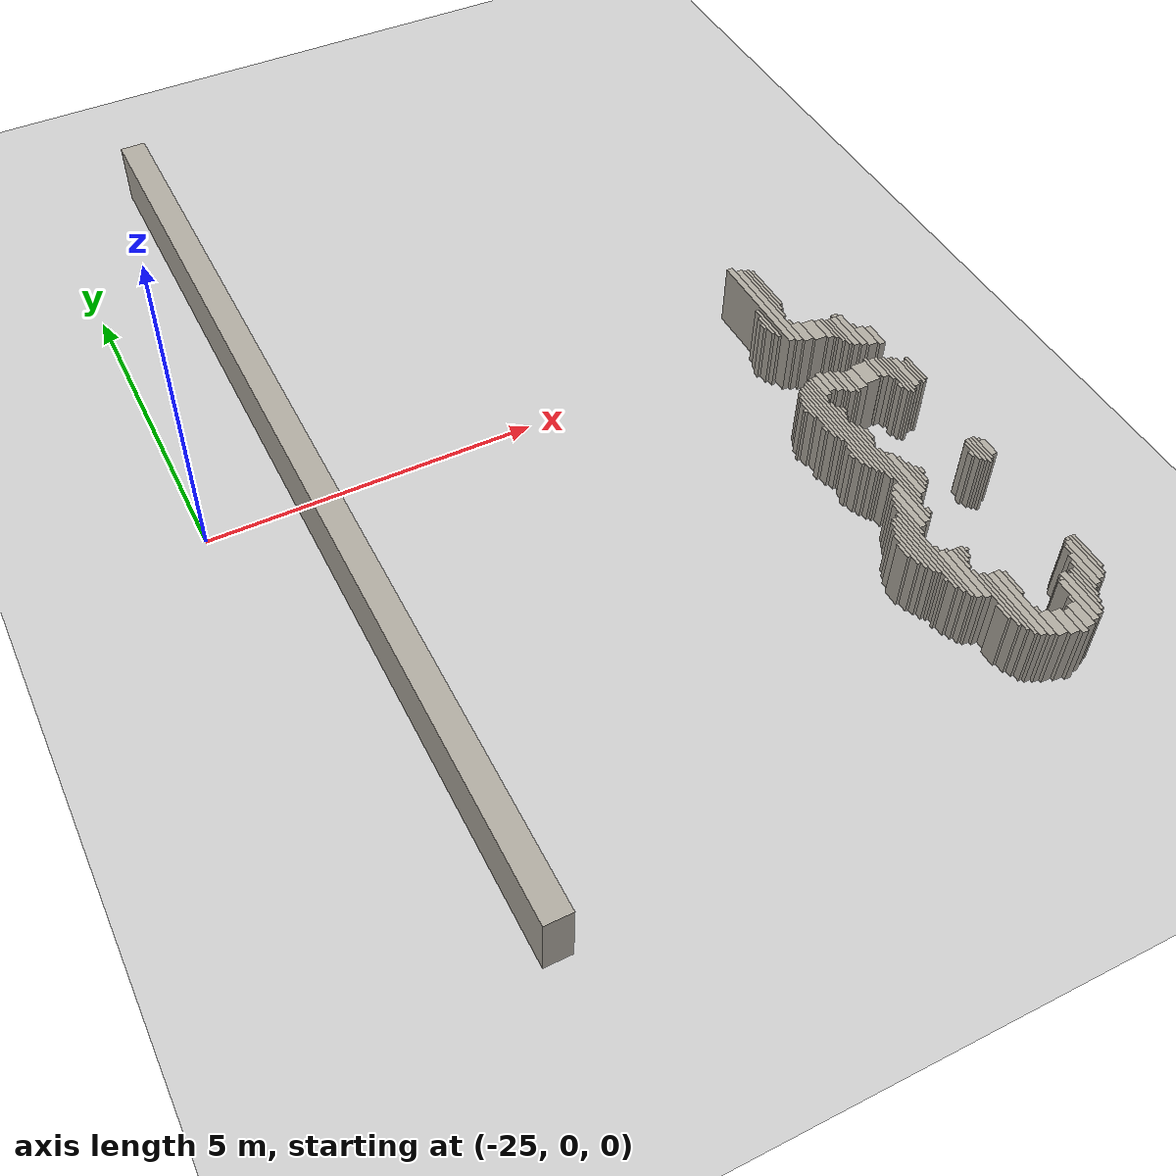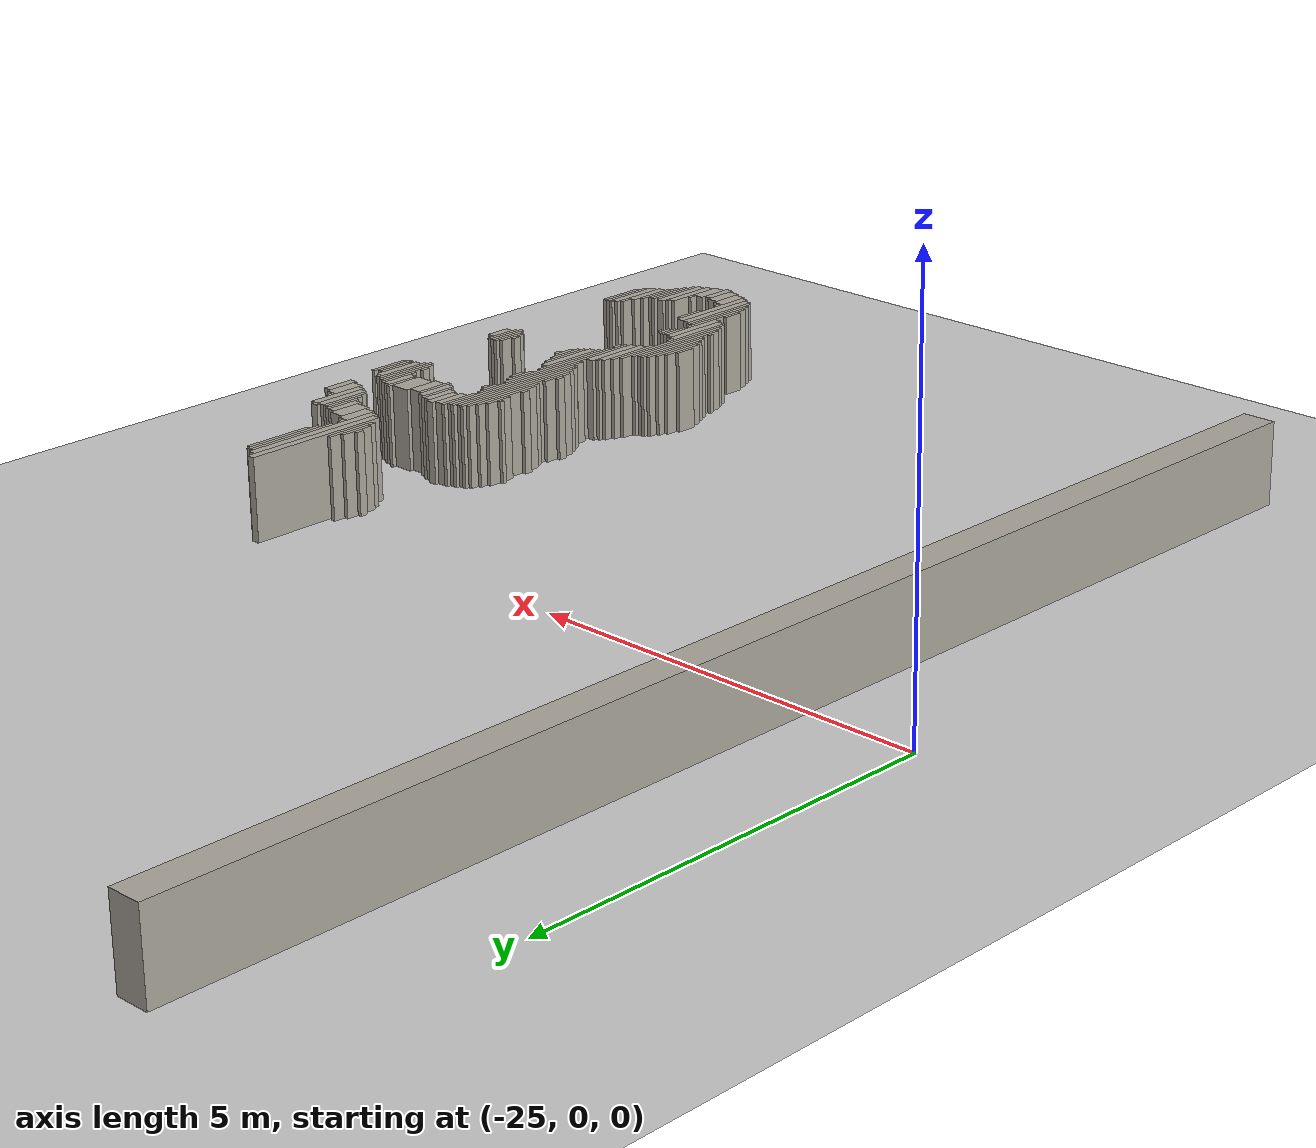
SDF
<sdf version="1.6">
 <world name="fr079_office">
  <include><uri>model://sun</uri></include>
  <include><uri>model://ground_plane</uri></include>
  <model name="fr079_office_walls">
   <static>true</static>
   <link name="w0001">
    <pose>-23.448 0.094 0.500 0 0 0</pose>
    <collision name="c"><geometry><box><size>0.400 15.700 1.000</size></box></geometry></collision>
    <visual name="v">
     <geometry><box><size>0.400 15.700 1.000</size></box></geometry>
     <material><ambient>0.68 0.66 0.62 1</ambient><diffuse>0.68 0.66 0.62 1</diffuse></material>
    </visual>
   </link>
   <link name="w0051">
    <pose>-15.748 -7.006 0.500 0 0 0</pose>
    <collision name="c"><geometry><box><size>0.100 0.400 1.000</size></box></geometry></collision>
    <visual name="v">
     <geometry><box><size>0.100 0.400 1.000</size></box></geometry>
     <material><ambient>0.68 0.66 0.62 1</ambient><diffuse>0.68 0.66 0.62 1</diffuse></material>
    </visual>
   </link>
   <link name="w0076">
    <pose>-15.873 -6.956 0.500 0 0 0</pose>
    <collision name="c"><geometry><box><size>0.150 0.400 1.000</size></box></geometry></collision>
    <visual name="v">
     <geometry><box><size>0.150 0.400 1.000</size></box></geometry>
     <material><ambient>0.68 0.66 0.62 1</ambient><diffuse>0.68 0.66 0.62 1</diffuse></material>
    </visual>
   </link>
   <link name="w0077">
    <pose>-15.623 -6.956 0.500 0 0 0</pose>
    <collision name="c"><geometry><box><size>0.150 0.400 1.000</size></box></geometry></collision>
    <visual name="v">
     <geometry><box><size>0.150 0.400 1.000</size></box></geometry>
     <material><ambient>0.68 0.66 0.62 1</ambient><diffuse>0.68 0.66 0.62 1</diffuse></material>
    </visual>
   </link>
   <link name="w0101">
    <pose>-16.023 -6.906 0.500 0 0 0</pose>
    <collision name="c"><geometry><box><size>0.150 0.400 1.000</size></box></geometry></collision>
    <visual name="v">
     <geometry><box><size>0.150 0.400 1.000</size></box></geometry>
     <material><ambient>0.68 0.66 0.62 1</ambient><diffuse>0.68 0.66 0.62 1</diffuse></material>
    </visual>
   </link>
   <link name="w0102">
    <pose>-15.498 -6.756 0.500 0 0 0</pose>
    <collision name="c"><geometry><box><size>0.100 0.700 1.000</size></box></geometry></collision>
    <visual name="v">
     <geometry><box><size>0.100 0.700 1.000</size></box></geometry>
     <material><ambient>0.68 0.66 0.62 1</ambient><diffuse>0.68 0.66 0.62 1</diffuse></material>
    </visual>
   </link>
   <link name="w0123">
    <pose>-16.148 -6.481 0.500 0 0 0</pose>
    <collision name="c"><geometry><box><size>0.100 1.150 1.000</size></box></geometry></collision>
    <visual name="v">
     <geometry><box><size>0.100 1.150 1.000</size></box></geometry>
     <material><ambient>0.68 0.66 0.62 1</ambient><diffuse>0.68 0.66 0.62 1</diffuse></material>
    </visual>
   </link>
   <link name="w0124">
    <pose>-15.398 -6.681 0.500 0 0 0</pose>
    <collision name="c"><geometry><box><size>0.100 0.750 1.000</size></box></geometry></collision>
    <visual name="v">
     <geometry><box><size>0.100 0.750 1.000</size></box></geometry>
     <material><ambient>0.68 0.66 0.62 1</ambient><diffuse>0.68 0.66 0.62 1</diffuse></material>
    </visual>
   </link>
   <link name="w0135">
    <pose>-16.248 -6.456 0.500 0 0 0</pose>
    <collision name="c"><geometry><box><size>0.100 1.100 1.000</size></box></geometry></collision>
    <visual name="v">
     <geometry><box><size>0.100 1.100 1.000</size></box></geometry>
     <material><ambient>0.68 0.66 0.62 1</ambient><diffuse>0.68 0.66 0.62 1</diffuse></material>
    </visual>
   </link>
   <link name="w0136">
    <pose>-15.323 -6.681 0.500 0 0 0</pose>
    <collision name="c"><geometry><box><size>0.050 0.650 1.000</size></box></geometry></collision>
    <visual name="v">
     <geometry><box><size>0.050 0.650 1.000</size></box></geometry>
     <material><ambient>0.68 0.66 0.62 1</ambient><diffuse>0.68 0.66 0.62 1</diffuse></material>
    </visual>
   </link>
   <link name="w0151">
    <pose>-16.323 -6.406 0.500 0 0 0</pose>
    <collision name="c"><geometry><box><size>0.050 1.100 1.000</size></box></geometry></collision>
    <visual name="v">
     <geometry><box><size>0.050 1.100 1.000</size></box></geometry>
     <material><ambient>0.68 0.66 0.62 1</ambient><diffuse>0.68 0.66 0.62 1</diffuse></material>
    </visual>
   </link>
   <link name="w0162">
    <pose>-15.273 -6.606 0.500 0 0 0</pose>
    <collision name="c"><geometry><box><size>0.050 0.600 1.000</size></box></geometry></collision>
    <visual name="v">
     <geometry><box><size>0.050 0.600 1.000</size></box></geometry>
     <material><ambient>0.68 0.66 0.62 1</ambient><diffuse>0.68 0.66 0.62 1</diffuse></material>
    </visual>
   </link>
   <link name="w0178">
    <pose>-16.373 -6.356 0.500 0 0 0</pose>
    <collision name="c"><geometry><box><size>0.050 1.000 1.000</size></box></geometry></collision>
    <visual name="v">
     <geometry><box><size>0.050 1.000 1.000</size></box></geometry>
     <material><ambient>0.68 0.66 0.62 1</ambient><diffuse>0.68 0.66 0.62 1</diffuse></material>
    </visual>
   </link>
   <link name="w0197">
    <pose>-15.223 -6.556 0.500 0 0 0</pose>
    <collision name="c"><geometry><box><size>0.050 0.500 1.000</size></box></geometry></collision>
    <visual name="v">
     <geometry><box><size>0.050 0.500 1.000</size></box></geometry>
     <material><ambient>0.68 0.66 0.62 1</ambient><diffuse>0.68 0.66 0.62 1</diffuse></material>
    </visual>
   </link>
   <link name="w0210">
    <pose>-16.423 -6.256 0.500 0 0 0</pose>
    <collision name="c"><geometry><box><size>0.050 1.000 1.000</size></box></geometry></collision>
    <visual name="v">
     <geometry><box><size>0.050 1.000 1.000</size></box></geometry>
     <material><ambient>0.68 0.66 0.62 1</ambient><diffuse>0.68 0.66 0.62 1</diffuse></material>
    </visual>
   </link>
   <link name="w0211">
    <pose>-15.573 -6.706 0.500 0 0 0</pose>
    <collision name="c"><geometry><box><size>0.050 0.100 1.000</size></box></geometry></collision>
    <visual name="v">
     <geometry><box><size>0.050 0.100 1.000</size></box></geometry>
     <material><ambient>0.68 0.66 0.62 1</ambient><diffuse>0.68 0.66 0.62 1</diffuse></material>
    </visual>
   </link>
   <link name="w0230">
    <pose>-16.073 -6.656 0.500 0 0 0</pose>
    <collision name="c"><geometry><box><size>0.050 0.100 1.000</size></box></geometry></collision>
    <visual name="v">
     <geometry><box><size>0.050 0.100 1.000</size></box></geometry>
     <material><ambient>0.68 0.66 0.62 1</ambient><diffuse>0.68 0.66 0.62 1</diffuse></material>
    </visual>
   </link>
   <link name="w0231">
    <pose>-15.173 -6.456 0.500 0 0 0</pose>
    <collision name="c"><geometry><box><size>0.050 0.500 1.000</size></box></geometry></collision>
    <visual name="v">
     <geometry><box><size>0.050 0.500 1.000</size></box></geometry>
     <material><ambient>0.68 0.66 0.62 1</ambient><diffuse>0.68 0.66 0.62 1</diffuse></material>
    </visual>
   </link>
   <link name="w0244">
    <pose>-15.098 -6.381 0.500 0 0 0</pose>
    <collision name="c"><geometry><box><size>0.100 0.550 1.000</size></box></geometry></collision>
    <visual name="v">
     <geometry><box><size>0.100 0.550 1.000</size></box></geometry>
     <material><ambient>0.68 0.66 0.62 1</ambient><diffuse>0.68 0.66 0.62 1</diffuse></material>
    </visual>
   </link>
   <link name="w0253">
    <pose>-16.473 -6.481 0.500 0 0 0</pose>
    <collision name="c"><geometry><box><size>0.050 0.250 1.000</size></box></geometry></collision>
    <visual name="v">
     <geometry><box><size>0.050 0.250 1.000</size></box></geometry>
     <material><ambient>0.68 0.66 0.62 1</ambient><diffuse>0.68 0.66 0.62 1</diffuse></material>
    </visual>
   </link>
   <link name="w0254">
    <pose>-14.998 -6.256 0.500 0 0 0</pose>
    <collision name="c"><geometry><box><size>0.100 0.700 1.000</size></box></geometry></collision>
    <visual name="v">
     <geometry><box><size>0.100 0.700 1.000</size></box></geometry>
     <material><ambient>0.68 0.66 0.62 1</ambient><diffuse>0.68 0.66 0.62 1</diffuse></material>
    </visual>
   </link>
   <link name="w0268">
    <pose>-14.923 -6.206 0.500 0 0 0</pose>
    <collision name="c"><geometry><box><size>0.050 0.700 1.000</size></box></geometry></collision>
    <visual name="v">
     <geometry><box><size>0.050 0.700 1.000</size></box></geometry>
     <material><ambient>0.68 0.66 0.62 1</ambient><diffuse>0.68 0.66 0.62 1</diffuse></material>
    </visual>
   </link>
   <link name="w0296">
    <pose>-14.873 -6.156 0.500 0 0 0</pose>
    <collision name="c"><geometry><box><size>0.050 0.600 1.000</size></box></geometry></collision>
    <visual name="v">
     <geometry><box><size>0.050 0.600 1.000</size></box></geometry>
     <material><ambient>0.68 0.66 0.62 1</ambient><diffuse>0.68 0.66 0.62 1</diffuse></material>
    </visual>
   </link>
   <link name="w0314">
    <pose>-15.473 -6.381 0.500 0 0 0</pose>
    <collision name="c"><geometry><box><size>0.050 0.050 1.000</size></box></geometry></collision>
    <visual name="v">
     <geometry><box><size>0.050 0.050 1.000</size></box></geometry>
     <material><ambient>0.68 0.66 0.62 1</ambient><diffuse>0.68 0.66 0.62 1</diffuse></material>
    </visual>
   </link>
   <link name="w0335">
    <pose>-16.073 -6.156 0.500 0 0 0</pose>
    <collision name="c"><geometry><box><size>0.050 0.400 1.000</size></box></geometry></collision>
    <visual name="v">
     <geometry><box><size>0.050 0.400 1.000</size></box></geometry>
     <material><ambient>0.68 0.66 0.62 1</ambient><diffuse>0.68 0.66 0.62 1</diffuse></material>
    </visual>
   </link>
   <link name="w0374">
    <pose>-16.498 -5.781 0.500 0 0 0</pose>
    <collision name="c"><geometry><box><size>0.100 0.850 1.000</size></box></geometry></collision>
    <visual name="v">
     <geometry><box><size>0.100 0.850 1.000</size></box></geometry>
     <material><ambient>0.68 0.66 0.62 1</ambient><diffuse>0.68 0.66 0.62 1</diffuse></material>
    </visual>
   </link>
   <link name="w0381">
    <pose>-16.598 -5.731 0.500 0 0 0</pose>
    <collision name="c"><geometry><box><size>0.100 0.850 1.000</size></box></geometry></collision>
    <visual name="v">
     <geometry><box><size>0.100 0.850 1.000</size></box></geometry>
     <material><ambient>0.68 0.66 0.62 1</ambient><diffuse>0.68 0.66 0.62 1</diffuse></material>
    </visual>
   </link>
   <link name="w0392">
    <pose>-16.673 -5.231 0.500 0 0 0</pose>
    <collision name="c"><geometry><box><size>0.050 1.750 1.000</size></box></geometry></collision>
    <visual name="v">
     <geometry><box><size>0.050 1.750 1.000</size></box></geometry>
     <material><ambient>0.68 0.66 0.62 1</ambient><diffuse>0.68 0.66 0.62 1</diffuse></material>
    </visual>
   </link>
   <link name="w0393">
    <pose>-15.073 -6.031 0.500 0 0 0</pose>
    <collision name="c"><geometry><box><size>0.050 0.150 1.000</size></box></geometry></collision>
    <visual name="v">
     <geometry><box><size>0.050 0.150 1.000</size></box></geometry>
     <material><ambient>0.68 0.66 0.62 1</ambient><diffuse>0.68 0.66 0.62 1</diffuse></material>
    </visual>
   </link>
   <link name="w0419">
    <pose>-16.723 -5.256 0.500 0 0 0</pose>
    <collision name="c"><geometry><box><size>0.050 1.500 1.000</size></box></geometry></collision>
    <visual name="v">
     <geometry><box><size>0.050 1.500 1.000</size></box></geometry>
     <material><ambient>0.68 0.66 0.62 1</ambient><diffuse>0.68 0.66 0.62 1</diffuse></material>
    </visual>
   </link>
   <link name="w0445">
    <pose>-16.773 -5.231 0.500 0 0 0</pose>
    <collision name="c"><geometry><box><size>0.050 1.350 1.000</size></box></geometry></collision>
    <visual name="v">
     <geometry><box><size>0.050 1.350 1.000</size></box></geometry>
     <material><ambient>0.68 0.66 0.62 1</ambient><diffuse>0.68 0.66 0.62 1</diffuse></material>
    </visual>
   </link>
   <link name="w0446">
    <pose>-14.973 -5.881 0.500 0 0 0</pose>
    <collision name="c"><geometry><box><size>0.050 0.050 1.000</size></box></geometry></collision>
    <visual name="v">
     <geometry><box><size>0.050 0.050 1.000</size></box></geometry>
     <material><ambient>0.68 0.66 0.62 1</ambient><diffuse>0.68 0.66 0.62 1</diffuse></material>
    </visual>
   </link>
   <link name="w0490">
    <pose>-16.823 -5.731 0.500 0 0 0</pose>
    <collision name="c"><geometry><box><size>0.050 0.050 1.000</size></box></geometry></collision>
    <visual name="v">
     <geometry><box><size>0.050 0.050 1.000</size></box></geometry>
     <material><ambient>0.68 0.66 0.62 1</ambient><diffuse>0.68 0.66 0.62 1</diffuse></material>
    </visual>
   </link>
   <link name="w0506">
    <pose>-16.423 -5.531 0.500 0 0 0</pose>
    <collision name="c"><geometry><box><size>0.050 0.350 1.000</size></box></geometry></collision>
    <visual name="v">
     <geometry><box><size>0.050 0.350 1.000</size></box></geometry>
     <material><ambient>0.68 0.66 0.62 1</ambient><diffuse>0.68 0.66 0.62 1</diffuse></material>
    </visual>
   </link>
   <link name="w0527">
    <pose>-16.823 -5.081 0.500 0 0 0</pose>
    <collision name="c"><geometry><box><size>0.050 1.050 1.000</size></box></geometry></collision>
    <visual name="v">
     <geometry><box><size>0.050 1.050 1.000</size></box></geometry>
     <material><ambient>0.68 0.66 0.62 1</ambient><diffuse>0.68 0.66 0.62 1</diffuse></material>
    </visual>
   </link>
   <link name="w0528">
    <pose>-16.373 -5.481 0.500 0 0 0</pose>
    <collision name="c"><geometry><box><size>0.050 0.250 1.000</size></box></geometry></collision>
    <visual name="v">
     <geometry><box><size>0.050 0.250 1.000</size></box></geometry>
     <material><ambient>0.68 0.66 0.62 1</ambient><diffuse>0.68 0.66 0.62 1</diffuse></material>
    </visual>
   </link>
   <link name="w0542">
    <pose>-16.873 -5.081 0.500 0 0 0</pose>
    <collision name="c"><geometry><box><size>0.050 0.950 1.000</size></box></geometry></collision>
    <visual name="v">
     <geometry><box><size>0.050 0.950 1.000</size></box></geometry>
     <material><ambient>0.68 0.66 0.62 1</ambient><diffuse>0.68 0.66 0.62 1</diffuse></material>
    </visual>
   </link>
   <link name="w0543">
    <pose>-16.323 -5.456 0.500 0 0 0</pose>
    <collision name="c"><geometry><box><size>0.050 0.200 1.000</size></box></geometry></collision>
    <visual name="v">
     <geometry><box><size>0.050 0.200 1.000</size></box></geometry>
     <material><ambient>0.68 0.66 0.62 1</ambient><diffuse>0.68 0.66 0.62 1</diffuse></material>
    </visual>
   </link>
   <link name="w0561">
    <pose>-16.923 -5.081 0.500 0 0 0</pose>
    <collision name="c"><geometry><box><size>0.050 0.750 1.000</size></box></geometry></collision>
    <visual name="v">
     <geometry><box><size>0.050 0.750 1.000</size></box></geometry>
     <material><ambient>0.68 0.66 0.62 1</ambient><diffuse>0.68 0.66 0.62 1</diffuse></material>
    </visual>
   </link>
   <link name="w0562">
    <pose>-16.273 -5.431 0.500 0 0 0</pose>
    <collision name="c"><geometry><box><size>0.050 0.050 1.000</size></box></geometry></collision>
    <visual name="v">
     <geometry><box><size>0.050 0.050 1.000</size></box></geometry>
     <material><ambient>0.68 0.66 0.62 1</ambient><diffuse>0.68 0.66 0.62 1</diffuse></material>
    </visual>
   </link>
   <link name="w0584">
    <pose>-16.973 -5.081 0.500 0 0 0</pose>
    <collision name="c"><geometry><box><size>0.050 0.550 1.000</size></box></geometry></collision>
    <visual name="v">
     <geometry><box><size>0.050 0.550 1.000</size></box></geometry>
     <material><ambient>0.68 0.66 0.62 1</ambient><diffuse>0.68 0.66 0.62 1</diffuse></material>
    </visual>
   </link>
   <link name="w0585">
    <pose>-16.523 -5.331 0.500 0 0 0</pose>
    <collision name="c"><geometry><box><size>0.050 0.050 1.000</size></box></geometry></collision>
    <visual name="v">
     <geometry><box><size>0.050 0.050 1.000</size></box></geometry>
     <material><ambient>0.68 0.66 0.62 1</ambient><diffuse>0.68 0.66 0.62 1</diffuse></material>
    </visual>
   </link>
   <link name="w0598">
    <pose>-16.623 -5.256 0.500 0 0 0</pose>
    <collision name="c"><geometry><box><size>0.050 0.100 1.000</size></box></geometry></collision>
    <visual name="v">
     <geometry><box><size>0.050 0.100 1.000</size></box></geometry>
     <material><ambient>0.68 0.66 0.62 1</ambient><diffuse>0.68 0.66 0.62 1</diffuse></material>
    </visual>
   </link>
   <link name="w0627">
    <pose>-17.023 -5.081 0.500 0 0 0</pose>
    <collision name="c"><geometry><box><size>0.050 0.250 1.000</size></box></geometry></collision>
    <visual name="v">
     <geometry><box><size>0.050 0.250 1.000</size></box></geometry>
     <material><ambient>0.68 0.66 0.62 1</ambient><diffuse>0.68 0.66 0.62 1</diffuse></material>
    </visual>
   </link>
   <link name="w0689">
    <pose>-16.623 -4.606 0.500 0 0 0</pose>
    <collision name="c"><geometry><box><size>0.050 0.700 1.000</size></box></geometry></collision>
    <visual name="v">
     <geometry><box><size>0.050 0.700 1.000</size></box></geometry>
     <material><ambient>0.68 0.66 0.62 1</ambient><diffuse>0.68 0.66 0.62 1</diffuse></material>
    </visual>
   </link>
   <link name="w0712">
    <pose>-16.548 -4.506 0.500 0 0 0</pose>
    <collision name="c"><geometry><box><size>0.100 0.700 1.000</size></box></geometry></collision>
    <visual name="v">
     <geometry><box><size>0.100 0.700 1.000</size></box></geometry>
     <material><ambient>0.68 0.66 0.62 1</ambient><diffuse>0.68 0.66 0.62 1</diffuse></material>
    </visual>
   </link>
   <link name="w0725">
    <pose>-16.448 -4.431 0.500 0 0 0</pose>
    <collision name="c"><geometry><box><size>0.100 0.750 1.000</size></box></geometry></collision>
    <visual name="v">
     <geometry><box><size>0.100 0.750 1.000</size></box></geometry>
     <material><ambient>0.68 0.66 0.62 1</ambient><diffuse>0.68 0.66 0.62 1</diffuse></material>
    </visual>
   </link>
   <link name="w0738">
    <pose>-16.373 -3.556 0.500 0 0 0</pose>
    <collision name="c"><geometry><box><size>0.050 2.400 1.000</size></box></geometry></collision>
    <visual name="v">
     <geometry><box><size>0.050 2.400 1.000</size></box></geometry>
     <material><ambient>0.68 0.66 0.62 1</ambient><diffuse>0.68 0.66 0.62 1</diffuse></material>
    </visual>
   </link>
   <link name="w0752">
    <pose>-16.323 -4.656 0.500 0 0 0</pose>
    <collision name="c"><geometry><box><size>0.050 0.100 1.000</size></box></geometry></collision>
    <visual name="v">
     <geometry><box><size>0.050 0.100 1.000</size></box></geometry>
     <material><ambient>0.68 0.66 0.62 1</ambient><diffuse>0.68 0.66 0.62 1</diffuse></material>
    </visual>
   </link>
   <link name="w0816">
    <pose>-16.323 -3.656 0.500 0 0 0</pose>
    <collision name="c"><geometry><box><size>0.050 1.700 1.000</size></box></geometry></collision>
    <visual name="v">
     <geometry><box><size>0.050 1.700 1.000</size></box></geometry>
     <material><ambient>0.68 0.66 0.62 1</ambient><diffuse>0.68 0.66 0.62 1</diffuse></material>
    </visual>
   </link>
   <link name="w0843">
    <pose>-16.273 -3.906 0.500 0 0 0</pose>
    <collision name="c"><geometry><box><size>0.050 1.000 1.000</size></box></geometry></collision>
    <visual name="v">
     <geometry><box><size>0.050 1.000 1.000</size></box></geometry>
     <material><ambient>0.68 0.66 0.62 1</ambient><diffuse>0.68 0.66 0.62 1</diffuse></material>
    </visual>
   </link>
   <link name="w0858">
    <pose>-16.198 -3.956 0.500 0 0 0</pose>
    <collision name="c"><geometry><box><size>0.100 0.800 1.000</size></box></geometry></collision>
    <visual name="v">
     <geometry><box><size>0.100 0.800 1.000</size></box></geometry>
     <material><ambient>0.68 0.66 0.62 1</ambient><diffuse>0.68 0.66 0.62 1</diffuse></material>
    </visual>
   </link>
   <link name="w0872">
    <pose>-16.123 -3.981 0.500 0 0 0</pose>
    <collision name="c"><geometry><box><size>0.050 0.650 1.000</size></box></geometry></collision>
    <visual name="v">
     <geometry><box><size>0.050 0.650 1.000</size></box></geometry>
     <material><ambient>0.68 0.66 0.62 1</ambient><diffuse>0.68 0.66 0.62 1</diffuse></material>
    </visual>
   </link>
   <link name="w0873">
    <pose>-15.023 -4.056 0.500 0 0 0</pose>
    <collision name="c"><geometry><box><size>0.050 0.500 1.000</size></box></geometry></collision>
    <visual name="v">
     <geometry><box><size>0.050 0.500 1.000</size></box></geometry>
     <material><ambient>0.68 0.66 0.62 1</ambient><diffuse>0.68 0.66 0.62 1</diffuse></material>
    </visual>
   </link>
   <link name="w0884">
    <pose>-16.073 -4.031 0.500 0 0 0</pose>
    <collision name="c"><geometry><box><size>0.050 0.450 1.000</size></box></geometry></collision>
    <visual name="v">
     <geometry><box><size>0.050 0.450 1.000</size></box></geometry>
     <material><ambient>0.68 0.66 0.62 1</ambient><diffuse>0.68 0.66 0.62 1</diffuse></material>
    </visual>
   </link>
   <link name="w0885">
    <pose>-15.073 -4.031 0.500 0 0 0</pose>
    <collision name="c"><geometry><box><size>0.050 0.450 1.000</size></box></geometry></collision>
    <visual name="v">
     <geometry><box><size>0.050 0.450 1.000</size></box></geometry>
     <material><ambient>0.68 0.66 0.62 1</ambient><diffuse>0.68 0.66 0.62 1</diffuse></material>
    </visual>
   </link>
   <link name="w0886">
    <pose>-14.973 -4.031 0.500 0 0 0</pose>
    <collision name="c"><geometry><box><size>0.050 0.450 1.000</size></box></geometry></collision>
    <visual name="v">
     <geometry><box><size>0.050 0.450 1.000</size></box></geometry>
     <material><ambient>0.68 0.66 0.62 1</ambient><diffuse>0.68 0.66 0.62 1</diffuse></material>
    </visual>
   </link>
   <link name="w0901">
    <pose>-16.023 -4.056 0.500 0 0 0</pose>
    <collision name="c"><geometry><box><size>0.050 0.300 1.000</size></box></geometry></collision>
    <visual name="v">
     <geometry><box><size>0.050 0.300 1.000</size></box></geometry>
     <material><ambient>0.68 0.66 0.62 1</ambient><diffuse>0.68 0.66 0.62 1</diffuse></material>
    </visual>
   </link>
   <link name="w0902">
    <pose>-15.123 -4.031 0.500 0 0 0</pose>
    <collision name="c"><geometry><box><size>0.050 0.350 1.000</size></box></geometry></collision>
    <visual name="v">
     <geometry><box><size>0.050 0.350 1.000</size></box></geometry>
     <material><ambient>0.68 0.66 0.62 1</ambient><diffuse>0.68 0.66 0.62 1</diffuse></material>
    </visual>
   </link>
   <link name="w0903">
    <pose>-14.898 -4.056 0.500 0 0 0</pose>
    <collision name="c"><geometry><box><size>0.100 0.300 1.000</size></box></geometry></collision>
    <visual name="v">
     <geometry><box><size>0.100 0.300 1.000</size></box></geometry>
     <material><ambient>0.68 0.66 0.62 1</ambient><diffuse>0.68 0.66 0.62 1</diffuse></material>
    </visual>
   </link>
   <link name="w0921">
    <pose>-16.523 -4.131 0.500 0 0 0</pose>
    <collision name="c"><geometry><box><size>0.050 0.050 1.000</size></box></geometry></collision>
    <visual name="v">
     <geometry><box><size>0.050 0.050 1.000</size></box></geometry>
     <material><ambient>0.68 0.66 0.62 1</ambient><diffuse>0.68 0.66 0.62 1</diffuse></material>
    </visual>
   </link>
   <link name="w0940">
    <pose>-15.173 -4.056 0.500 0 0 0</pose>
    <collision name="c"><geometry><box><size>0.050 0.100 1.000</size></box></geometry></collision>
    <visual name="v">
     <geometry><box><size>0.050 0.100 1.000</size></box></geometry>
     <material><ambient>0.68 0.66 0.62 1</ambient><diffuse>0.68 0.66 0.62 1</diffuse></material>
    </visual>
   </link>
   <link name="w0950">
    <pose>-15.973 -4.006 0.500 0 0 0</pose>
    <collision name="c"><geometry><box><size>0.050 0.100 1.000</size></box></geometry></collision>
    <visual name="v">
     <geometry><box><size>0.050 0.100 1.000</size></box></geometry>
     <material><ambient>0.68 0.66 0.62 1</ambient><diffuse>0.68 0.66 0.62 1</diffuse></material>
    </visual>
   </link>
   <link name="w0975">
    <pose>-16.423 -2.906 0.500 0 0 0</pose>
    <collision name="c"><geometry><box><size>0.050 2.100 1.000</size></box></geometry></collision>
    <visual name="v">
     <geometry><box><size>0.050 2.100 1.000</size></box></geometry>
     <material><ambient>0.68 0.66 0.62 1</ambient><diffuse>0.68 0.66 0.62 1</diffuse></material>
    </visual>
   </link>
   <link name="w0989">
    <pose>-14.923 -3.881 0.500 0 0 0</pose>
    <collision name="c"><geometry><box><size>0.050 0.050 1.000</size></box></geometry></collision>
    <visual name="v">
     <geometry><box><size>0.050 0.050 1.000</size></box></geometry>
     <material><ambient>0.68 0.66 0.62 1</ambient><diffuse>0.68 0.66 0.62 1</diffuse></material>
    </visual>
   </link>
   <link name="w1014">
    <pose>-16.473 -2.831 0.500 0 0 0</pose>
    <collision name="c"><geometry><box><size>0.050 1.950 1.000</size></box></geometry></collision>
    <visual name="v">
     <geometry><box><size>0.050 1.950 1.000</size></box></geometry>
     <material><ambient>0.68 0.66 0.62 1</ambient><diffuse>0.68 0.66 0.62 1</diffuse></material>
    </visual>
   </link>
   <link name="w1025">
    <pose>-16.523 -2.831 0.500 0 0 0</pose>
    <collision name="c"><geometry><box><size>0.050 1.850 1.000</size></box></geometry></collision>
    <visual name="v">
     <geometry><box><size>0.050 1.850 1.000</size></box></geometry>
     <material><ambient>0.68 0.66 0.62 1</ambient><diffuse>0.68 0.66 0.62 1</diffuse></material>
    </visual>
   </link>
   <link name="w1052">
    <pose>-16.573 -2.781 0.500 0 0 0</pose>
    <collision name="c"><geometry><box><size>0.050 1.750 1.000</size></box></geometry></collision>
    <visual name="v">
     <geometry><box><size>0.050 1.750 1.000</size></box></geometry>
     <material><ambient>0.68 0.66 0.62 1</ambient><diffuse>0.68 0.66 0.62 1</diffuse></material>
    </visual>
   </link>
   <link name="w1071">
    <pose>-16.623 -3.356 0.500 0 0 0</pose>
    <collision name="c"><geometry><box><size>0.050 0.400 1.000</size></box></geometry></collision>
    <visual name="v">
     <geometry><box><size>0.050 0.400 1.000</size></box></geometry>
     <material><ambient>0.68 0.66 0.62 1</ambient><diffuse>0.68 0.66 0.62 1</diffuse></material>
    </visual>
   </link>
   <link name="w1072">
    <pose>-16.223 -3.531 0.500 0 0 0</pose>
    <collision name="c"><geometry><box><size>0.050 0.050 1.000</size></box></geometry></collision>
    <visual name="v">
     <geometry><box><size>0.050 0.050 1.000</size></box></geometry>
     <material><ambient>0.68 0.66 0.62 1</ambient><diffuse>0.68 0.66 0.62 1</diffuse></material>
    </visual>
   </link>
   <link name="w1093">
    <pose>-16.673 -3.356 0.500 0 0 0</pose>
    <collision name="c"><geometry><box><size>0.050 0.100 1.000</size></box></geometry></collision>
    <visual name="v">
     <geometry><box><size>0.050 0.100 1.000</size></box></geometry>
     <material><ambient>0.68 0.66 0.62 1</ambient><diffuse>0.68 0.66 0.62 1</diffuse></material>
    </visual>
   </link>
   <link name="w1106">
    <pose>-16.273 -3.106 0.500 0 0 0</pose>
    <collision name="c"><geometry><box><size>0.050 0.400 1.000</size></box></geometry></collision>
    <visual name="v">
     <geometry><box><size>0.050 0.400 1.000</size></box></geometry>
     <material><ambient>0.68 0.66 0.62 1</ambient><diffuse>0.68 0.66 0.62 1</diffuse></material>
    </visual>
   </link>
   <link name="w1117">
    <pose>-16.223 -3.106 0.500 0 0 0</pose>
    <collision name="c"><geometry><box><size>0.050 0.200 1.000</size></box></geometry></collision>
    <visual name="v">
     <geometry><box><size>0.050 0.200 1.000</size></box></geometry>
     <material><ambient>0.68 0.66 0.62 1</ambient><diffuse>0.68 0.66 0.62 1</diffuse></material>
    </visual>
   </link>
   <link name="w1139">
    <pose>-16.623 -2.506 0.500 0 0 0</pose>
    <collision name="c"><geometry><box><size>0.050 1.100 1.000</size></box></geometry></collision>
    <visual name="v">
     <geometry><box><size>0.050 1.100 1.000</size></box></geometry>
     <material><ambient>0.68 0.66 0.62 1</ambient><diffuse>0.68 0.66 0.62 1</diffuse></material>
    </visual>
   </link>
   <link name="w1159">
    <pose>-16.673 -2.506 0.500 0 0 0</pose>
    <collision name="c"><geometry><box><size>0.050 0.900 1.000</size></box></geometry></collision>
    <visual name="v">
     <geometry><box><size>0.050 0.900 1.000</size></box></geometry>
     <material><ambient>0.68 0.66 0.62 1</ambient><diffuse>0.68 0.66 0.62 1</diffuse></material>
    </visual>
   </link>
   <link name="w1201">
    <pose>-16.723 -2.756 0.500 0 0 0</pose>
    <collision name="c"><geometry><box><size>0.050 0.100 1.000</size></box></geometry></collision>
    <visual name="v">
     <geometry><box><size>0.050 0.100 1.000</size></box></geometry>
     <material><ambient>0.68 0.66 0.62 1</ambient><diffuse>0.68 0.66 0.62 1</diffuse></material>
    </visual>
   </link>
   <link name="w1218">
    <pose>-16.323 -2.581 0.500 0 0 0</pose>
    <collision name="c"><geometry><box><size>0.050 0.250 1.000</size></box></geometry></collision>
    <visual name="v">
     <geometry><box><size>0.050 0.250 1.000</size></box></geometry>
     <material><ambient>0.68 0.66 0.62 1</ambient><diffuse>0.68 0.66 0.62 1</diffuse></material>
    </visual>
   </link>
   <link name="w1219">
    <pose>-15.173 -2.306 0.500 0 0 0</pose>
    <collision name="c"><geometry><box><size>0.050 0.800 1.000</size></box></geometry></collision>
    <visual name="v">
     <geometry><box><size>0.050 0.800 1.000</size></box></geometry>
     <material><ambient>0.68 0.66 0.62 1</ambient><diffuse>0.68 0.66 0.62 1</diffuse></material>
    </visual>
   </link>
   <link name="w1230">
    <pose>-15.223 -2.281 0.500 0 0 0</pose>
    <collision name="c"><geometry><box><size>0.050 0.750 1.000</size></box></geometry></collision>
    <visual name="v">
     <geometry><box><size>0.050 0.750 1.000</size></box></geometry>
     <material><ambient>0.68 0.66 0.62 1</ambient><diffuse>0.68 0.66 0.62 1</diffuse></material>
    </visual>
   </link>
   <link name="w1231">
    <pose>-15.123 -2.306 0.500 0 0 0</pose>
    <collision name="c"><geometry><box><size>0.050 0.700 1.000</size></box></geometry></collision>
    <visual name="v">
     <geometry><box><size>0.050 0.700 1.000</size></box></geometry>
     <material><ambient>0.68 0.66 0.62 1</ambient><diffuse>0.68 0.66 0.62 1</diffuse></material>
    </visual>
   </link>
   <link name="w1244">
    <pose>-16.273 -2.556 0.500 0 0 0</pose>
    <collision name="c"><geometry><box><size>0.050 0.100 1.000</size></box></geometry></collision>
    <visual name="v">
     <geometry><box><size>0.050 0.100 1.000</size></box></geometry>
     <material><ambient>0.68 0.66 0.62 1</ambient><diffuse>0.68 0.66 0.62 1</diffuse></material>
    </visual>
   </link>
   <link name="w1245">
    <pose>-15.048 -2.306 0.500 0 0 0</pose>
    <collision name="c"><geometry><box><size>0.100 0.600 1.000</size></box></geometry></collision>
    <visual name="v">
     <geometry><box><size>0.100 0.600 1.000</size></box></geometry>
     <material><ambient>0.68 0.66 0.62 1</ambient><diffuse>0.68 0.66 0.62 1</diffuse></material>
    </visual>
   </link>
   <link name="w1246">
    <pose>-14.923 -2.356 0.500 0 0 0</pose>
    <collision name="c"><geometry><box><size>0.050 0.500 1.000</size></box></geometry></collision>
    <visual name="v">
     <geometry><box><size>0.050 0.500 1.000</size></box></geometry>
     <material><ambient>0.68 0.66 0.62 1</ambient><diffuse>0.68 0.66 0.62 1</diffuse></material>
    </visual>
   </link>
   <link name="w1260">
    <pose>-15.273 -2.506 0.500 0 0 0</pose>
    <collision name="c"><geometry><box><size>0.050 0.100 1.000</size></box></geometry></collision>
    <visual name="v">
     <geometry><box><size>0.050 0.100 1.000</size></box></geometry>
     <material><ambient>0.68 0.66 0.62 1</ambient><diffuse>0.68 0.66 0.62 1</diffuse></material>
    </visual>
   </link>
   <link name="w1261">
    <pose>-14.973 -2.331 0.500 0 0 0</pose>
    <collision name="c"><geometry><box><size>0.050 0.450 1.000</size></box></geometry></collision>
    <visual name="v">
     <geometry><box><size>0.050 0.450 1.000</size></box></geometry>
     <material><ambient>0.68 0.66 0.62 1</ambient><diffuse>0.68 0.66 0.62 1</diffuse></material>
    </visual>
   </link>
   <link name="w1262">
    <pose>-14.873 -2.306 0.500 0 0 0</pose>
    <collision name="c"><geometry><box><size>0.050 0.500 1.000</size></box></geometry></collision>
    <visual name="v">
     <geometry><box><size>0.050 0.500 1.000</size></box></geometry>
     <material><ambient>0.68 0.66 0.62 1</ambient><diffuse>0.68 0.66 0.62 1</diffuse></material>
    </visual>
   </link>
   <link name="w1277">
    <pose>-16.723 -2.331 0.500 0 0 0</pose>
    <collision name="c"><geometry><box><size>0.050 0.350 1.000</size></box></geometry></collision>
    <visual name="v">
     <geometry><box><size>0.050 0.350 1.000</size></box></geometry>
     <material><ambient>0.68 0.66 0.62 1</ambient><diffuse>0.68 0.66 0.62 1</diffuse></material>
    </visual>
   </link>
   <link name="w1329">
    <pose>-16.773 -2.331 0.500 0 0 0</pose>
    <collision name="c"><geometry><box><size>0.050 0.050 1.000</size></box></geometry></collision>
    <visual name="v">
     <geometry><box><size>0.050 0.050 1.000</size></box></geometry>
     <material><ambient>0.68 0.66 0.62 1</ambient><diffuse>0.68 0.66 0.62 1</diffuse></material>
    </visual>
   </link>
   <link name="w1330">
    <pose>-15.873 -2.131 0.500 0 0 0</pose>
    <collision name="c"><geometry><box><size>0.050 0.450 1.000</size></box></geometry></collision>
    <visual name="v">
     <geometry><box><size>0.050 0.450 1.000</size></box></geometry>
     <material><ambient>0.68 0.66 0.62 1</ambient><diffuse>0.68 0.66 0.62 1</diffuse></material>
    </visual>
   </link>
   <link name="w1331">
    <pose>-15.273 -2.106 0.500 0 0 0</pose>
    <collision name="c"><geometry><box><size>0.050 0.500 1.000</size></box></geometry></collision>
    <visual name="v">
     <geometry><box><size>0.050 0.500 1.000</size></box></geometry>
     <material><ambient>0.68 0.66 0.62 1</ambient><diffuse>0.68 0.66 0.62 1</diffuse></material>
    </visual>
   </link>
   <link name="w1345">
    <pose>-16.373 -2.056 0.500 0 0 0</pose>
    <collision name="c"><geometry><box><size>0.050 0.500 1.000</size></box></geometry></collision>
    <visual name="v">
     <geometry><box><size>0.050 0.500 1.000</size></box></geometry>
     <material><ambient>0.68 0.66 0.62 1</ambient><diffuse>0.68 0.66 0.62 1</diffuse></material>
    </visual>
   </link>
   <link name="w1346">
    <pose>-15.948 -2.081 0.500 0 0 0</pose>
    <collision name="c"><geometry><box><size>0.100 0.450 1.000</size></box></geometry></collision>
    <visual name="v">
     <geometry><box><size>0.100 0.450 1.000</size></box></geometry>
     <material><ambient>0.68 0.66 0.62 1</ambient><diffuse>0.68 0.66 0.62 1</diffuse></material>
    </visual>
   </link>
   <link name="w1347">
    <pose>-15.773 -2.106 0.500 0 0 0</pose>
    <collision name="c"><geometry><box><size>0.150 0.400 1.000</size></box></geometry></collision>
    <visual name="v">
     <geometry><box><size>0.150 0.400 1.000</size></box></geometry>
     <material><ambient>0.68 0.66 0.62 1</ambient><diffuse>0.68 0.66 0.62 1</diffuse></material>
    </visual>
   </link>
   <link name="w1361">
    <pose>-16.023 -2.031 0.500 0 0 0</pose>
    <collision name="c"><geometry><box><size>0.050 0.450 1.000</size></box></geometry></collision>
    <visual name="v">
     <geometry><box><size>0.050 0.450 1.000</size></box></geometry>
     <material><ambient>0.68 0.66 0.62 1</ambient><diffuse>0.68 0.66 0.62 1</diffuse></material>
    </visual>
   </link>
   <link name="w1362">
    <pose>-15.573 -2.056 0.500 0 0 0</pose>
    <collision name="c"><geometry><box><size>0.250 0.400 1.000</size></box></geometry></collision>
    <visual name="v">
     <geometry><box><size>0.250 0.400 1.000</size></box></geometry>
     <material><ambient>0.68 0.66 0.62 1</ambient><diffuse>0.68 0.66 0.62 1</diffuse></material>
    </visual>
   </link>
   <link name="w1363">
    <pose>-15.348 -2.056 0.500 0 0 0</pose>
    <collision name="c"><geometry><box><size>0.100 0.400 1.000</size></box></geometry></collision>
    <visual name="v">
     <geometry><box><size>0.100 0.400 1.000</size></box></geometry>
     <material><ambient>0.68 0.66 0.62 1</ambient><diffuse>0.68 0.66 0.62 1</diffuse></material>
    </visual>
   </link>
   <link name="w1382">
    <pose>-16.298 -2.006 0.500 0 0 0</pose>
    <collision name="c"><geometry><box><size>0.100 0.400 1.000</size></box></geometry></collision>
    <visual name="v">
     <geometry><box><size>0.100 0.400 1.000</size></box></geometry>
     <material><ambient>0.68 0.66 0.62 1</ambient><diffuse>0.68 0.66 0.62 1</diffuse></material>
    </visual>
   </link>
   <link name="w1383">
    <pose>-16.098 -2.006 0.500 0 0 0</pose>
    <collision name="c"><geometry><box><size>0.100 0.400 1.000</size></box></geometry></collision>
    <visual name="v">
     <geometry><box><size>0.100 0.400 1.000</size></box></geometry>
     <material><ambient>0.68 0.66 0.62 1</ambient><diffuse>0.68 0.66 0.62 1</diffuse></material>
    </visual>
   </link>
   <link name="w1384">
    <pose>-15.423 -2.006 0.500 0 0 0</pose>
    <collision name="c"><geometry><box><size>0.050 0.400 1.000</size></box></geometry></collision>
    <visual name="v">
     <geometry><box><size>0.050 0.400 1.000</size></box></geometry>
     <material><ambient>0.68 0.66 0.62 1</ambient><diffuse>0.68 0.66 0.62 1</diffuse></material>
    </visual>
   </link>
   <link name="w1402">
    <pose>-16.198 -1.956 0.500 0 0 0</pose>
    <collision name="c"><geometry><box><size>0.100 0.400 1.000</size></box></geometry></collision>
    <visual name="v">
     <geometry><box><size>0.100 0.400 1.000</size></box></geometry>
     <material><ambient>0.68 0.66 0.62 1</ambient><diffuse>0.68 0.66 0.62 1</diffuse></material>
    </visual>
   </link>
   <link name="w1446">
    <pose>-15.073 -1.981 0.500 0 0 0</pose>
    <collision name="c"><geometry><box><size>0.050 0.050 1.000</size></box></geometry></collision>
    <visual name="v">
     <geometry><box><size>0.050 0.050 1.000</size></box></geometry>
     <material><ambient>0.68 0.66 0.62 1</ambient><diffuse>0.68 0.66 0.62 1</diffuse></material>
    </visual>
   </link>
   <link name="w1571">
    <pose>-14.998 -1.456 0.500 0 0 0</pose>
    <collision name="c"><geometry><box><size>0.100 0.400 1.000</size></box></geometry></collision>
    <visual name="v">
     <geometry><box><size>0.100 0.400 1.000</size></box></geometry>
     <material><ambient>0.68 0.66 0.62 1</ambient><diffuse>0.68 0.66 0.62 1</diffuse></material>
    </visual>
   </link>
   <link name="w1599">
    <pose>-15.123 -1.406 0.500 0 0 0</pose>
    <collision name="c"><geometry><box><size>0.150 0.400 1.000</size></box></geometry></collision>
    <visual name="v">
     <geometry><box><size>0.150 0.400 1.000</size></box></geometry>
     <material><ambient>0.68 0.66 0.62 1</ambient><diffuse>0.68 0.66 0.62 1</diffuse></material>
    </visual>
   </link>
   <link name="w1631">
    <pose>-15.248 -1.206 0.500 0 0 0</pose>
    <collision name="c"><geometry><box><size>0.100 0.700 1.000</size></box></geometry></collision>
    <visual name="v">
     <geometry><box><size>0.100 0.700 1.000</size></box></geometry>
     <material><ambient>0.68 0.66 0.62 1</ambient><diffuse>0.68 0.66 0.62 1</diffuse></material>
    </visual>
   </link>
   <link name="w1658">
    <pose>-15.348 -1.181 0.500 0 0 0</pose>
    <collision name="c"><geometry><box><size>0.100 0.650 1.000</size></box></geometry></collision>
    <visual name="v">
     <geometry><box><size>0.100 0.650 1.000</size></box></geometry>
     <material><ambient>0.68 0.66 0.62 1</ambient><diffuse>0.68 0.66 0.62 1</diffuse></material>
    </visual>
   </link>
   <link name="w1682">
    <pose>-15.423 -1.156 0.500 0 0 0</pose>
    <collision name="c"><geometry><box><size>0.050 0.600 1.000</size></box></geometry></collision>
    <visual name="v">
     <geometry><box><size>0.050 0.600 1.000</size></box></geometry>
     <material><ambient>0.68 0.66 0.62 1</ambient><diffuse>0.68 0.66 0.62 1</diffuse></material>
    </visual>
   </link>
   <link name="w1703">
    <pose>-15.473 -1.106 0.500 0 0 0</pose>
    <collision name="c"><geometry><box><size>0.050 0.500 1.000</size></box></geometry></collision>
    <visual name="v">
     <geometry><box><size>0.050 0.500 1.000</size></box></geometry>
     <material><ambient>0.68 0.66 0.62 1</ambient><diffuse>0.68 0.66 0.62 1</diffuse></material>
    </visual>
   </link>
   <link name="w1728">
    <pose>-15.523 -1.031 0.500 0 0 0</pose>
    <collision name="c"><geometry><box><size>0.050 0.450 1.000</size></box></geometry></collision>
    <visual name="v">
     <geometry><box><size>0.050 0.450 1.000</size></box></geometry>
     <material><ambient>0.68 0.66 0.62 1</ambient><diffuse>0.68 0.66 0.62 1</diffuse></material>
    </visual>
   </link>
   <link name="w1741">
    <pose>-15.598 -1.006 0.500 0 0 0</pose>
    <collision name="c"><geometry><box><size>0.100 0.400 1.000</size></box></geometry></collision>
    <visual name="v">
     <geometry><box><size>0.100 0.400 1.000</size></box></geometry>
     <material><ambient>0.68 0.66 0.62 1</ambient><diffuse>0.68 0.66 0.62 1</diffuse></material>
    </visual>
   </link>
   <link name="w1742">
    <pose>-15.173 -1.156 0.500 0 0 0</pose>
    <collision name="c"><geometry><box><size>0.050 0.100 1.000</size></box></geometry></collision>
    <visual name="v">
     <geometry><box><size>0.050 0.100 1.000</size></box></geometry>
     <material><ambient>0.68 0.66 0.62 1</ambient><diffuse>0.68 0.66 0.62 1</diffuse></material>
    </visual>
   </link>
   <link name="w1747">
    <pose>-15.748 -0.956 0.500 0 0 0</pose>
    <collision name="c"><geometry><box><size>0.200 0.400 1.000</size></box></geometry></collision>
    <visual name="v">
     <geometry><box><size>0.200 0.400 1.000</size></box></geometry>
     <material><ambient>0.68 0.66 0.62 1</ambient><diffuse>0.68 0.66 0.62 1</diffuse></material>
    </visual>
   </link>
   <link name="w1754">
    <pose>-15.923 -0.906 0.500 0 0 0</pose>
    <collision name="c"><geometry><box><size>0.150 0.400 1.000</size></box></geometry></collision>
    <visual name="v">
     <geometry><box><size>0.150 0.400 1.000</size></box></geometry>
     <material><ambient>0.68 0.66 0.62 1</ambient><diffuse>0.68 0.66 0.62 1</diffuse></material>
    </visual>
   </link>
   <link name="w1760">
    <pose>-16.048 -0.181 0.500 0 0 0</pose>
    <collision name="c"><geometry><box><size>0.100 1.750 1.000</size></box></geometry></collision>
    <visual name="v">
     <geometry><box><size>0.100 1.750 1.000</size></box></geometry>
     <material><ambient>0.68 0.66 0.62 1</ambient><diffuse>0.68 0.66 0.62 1</diffuse></material>
    </visual>
   </link>
   <link name="w1764">
    <pose>-16.148 -0.106 0.500 0 0 0</pose>
    <collision name="c"><geometry><box><size>0.100 1.800 1.000</size></box></geometry></collision>
    <visual name="v">
     <geometry><box><size>0.100 1.800 1.000</size></box></geometry>
     <material><ambient>0.68 0.66 0.62 1</ambient><diffuse>0.68 0.66 0.62 1</diffuse></material>
    </visual>
   </link>
   <link name="w1776">
    <pose>-16.273 -0.531 0.500 0 0 0</pose>
    <collision name="c"><geometry><box><size>0.050 0.650 1.000</size></box></geometry></collision>
    <visual name="v">
     <geometry><box><size>0.050 0.650 1.000</size></box></geometry>
     <material><ambient>0.68 0.66 0.62 1</ambient><diffuse>0.68 0.66 0.62 1</diffuse></material>
    </visual>
   </link>
   <link name="w1777">
    <pose>-15.298 -0.831 0.500 0 0 0</pose>
    <collision name="c"><geometry><box><size>0.100 0.050 1.000</size></box></geometry></collision>
    <visual name="v">
     <geometry><box><size>0.100 0.050 1.000</size></box></geometry>
     <material><ambient>0.68 0.66 0.62 1</ambient><diffuse>0.68 0.66 0.62 1</diffuse></material>
    </visual>
   </link>
   <link name="w1781">
    <pose>-16.323 -0.556 0.500 0 0 0</pose>
    <collision name="c"><geometry><box><size>0.050 0.400 1.000</size></box></geometry></collision>
    <visual name="v">
     <geometry><box><size>0.050 0.400 1.000</size></box></geometry>
     <material><ambient>0.68 0.66 0.62 1</ambient><diffuse>0.68 0.66 0.62 1</diffuse></material>
    </visual>
   </link>
   <link name="w1787">
    <pose>-15.973 -0.656 0.500 0 0 0</pose>
    <collision name="c"><geometry><box><size>0.050 0.100 1.000</size></box></geometry></collision>
    <visual name="v">
     <geometry><box><size>0.050 0.100 1.000</size></box></geometry>
     <material><ambient>0.68 0.66 0.62 1</ambient><diffuse>0.68 0.66 0.62 1</diffuse></material>
    </visual>
   </link>
   <link name="w1792">
    <pose>-16.373 -0.556 0.500 0 0 0</pose>
    <collision name="c"><geometry><box><size>0.050 0.100 1.000</size></box></geometry></collision>
    <visual name="v">
     <geometry><box><size>0.050 0.100 1.000</size></box></geometry>
     <material><ambient>0.68 0.66 0.62 1</ambient><diffuse>0.68 0.66 0.62 1</diffuse></material>
    </visual>
   </link>
   <link name="w1795">
    <pose>-15.973 0.069 0.500 0 0 0</pose>
    <collision name="c"><geometry><box><size>0.050 1.150 1.000</size></box></geometry></collision>
    <visual name="v">
     <geometry><box><size>0.050 1.150 1.000</size></box></geometry>
     <material><ambient>0.68 0.66 0.62 1</ambient><diffuse>0.68 0.66 0.62 1</diffuse></material>
    </visual>
   </link>
   <link name="w1797">
    <pose>-15.923 0.144 0.500 0 0 0</pose>
    <collision name="c"><geometry><box><size>0.050 1.000 1.000</size></box></geometry></collision>
    <visual name="v">
     <geometry><box><size>0.050 1.000 1.000</size></box></geometry>
     <material><ambient>0.68 0.66 0.62 1</ambient><diffuse>0.68 0.66 0.62 1</diffuse></material>
    </visual>
   </link>
   <link name="w1798">
    <pose>-15.873 0.169 0.500 0 0 0</pose>
    <collision name="c"><geometry><box><size>0.050 0.850 1.000</size></box></geometry></collision>
    <visual name="v">
     <geometry><box><size>0.050 0.850 1.000</size></box></geometry>
     <material><ambient>0.68 0.66 0.62 1</ambient><diffuse>0.68 0.66 0.62 1</diffuse></material>
    </visual>
   </link>
  </model>
 </world>
</sdf>
